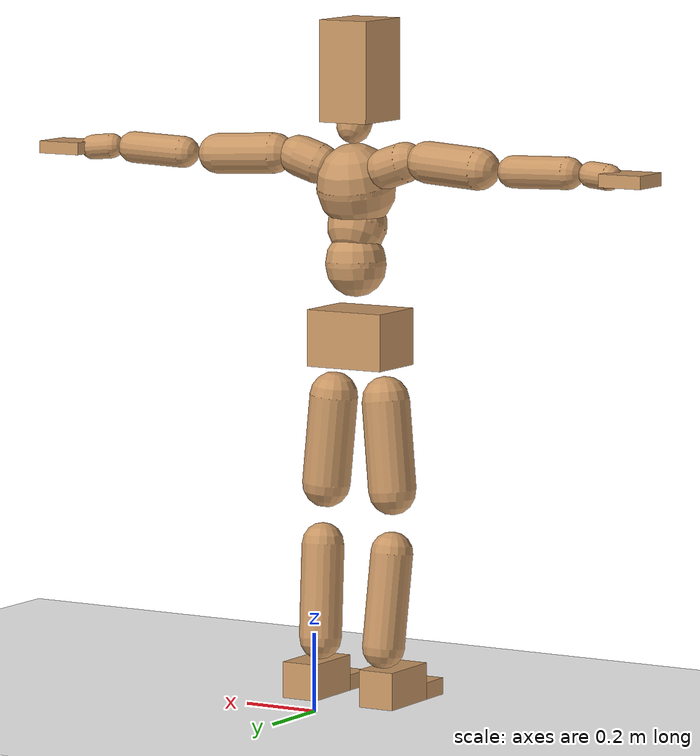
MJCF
<mujoco model="humanoid">
  <option integrator="implicitfast" />

  <visual>
    <global offwidth="1280" offheight="960" />
    <headlight active="1" ambient="0.34 0.34 0.34" diffuse="0.5 0.5 0.5" />
  </visual>

  <default>
    <joint damping="2" stiffness="2" armature="0.01" limited="true" solimplimit="0 .99 .01" />
    <geom condim="1" friction="0.7 0.005 0.0001" solimp=".99 .99 .003" solref="0.015 1" margin="0.001" rgba="0.8 0.6 .4 1" />
    <default class="smplcontact">
      <geom condim="3" friction="1. 0.005 0.0001" solref="0.015 1" solimp="0.98 0.98 0.001" priority="1" />
    </default>
    <default class="stiff_medium">
      <joint stiffness="10" />
    </default>
    <default class="stiff_medium_higher">
      <joint stiffness="50" />
    </default>
    <default class="stiff_high">
      <joint stiffness="100" />
    </default>
  </default>

  <asset>
    <texture type="skybox" builtin="gradient" rgb1="0.99 0.99 0.99" rgb2="0.608 0.828 0.892" width="100" />
    <texture builtin="flat" height="1278" mark="cross" markrgb="1 1 1" name="texgeom" random="0.01" rgb1="0.8 0.6 0.4" rgb2="0.8 0.6 0.4" type="cube" width="127" />
    <texture name="texplane" type="2d" builtin="checker" markrgb="1 1 1" rgb1="0.756 0.772 0.76" rgb2="0.6 0.6 0.6" width="100" height="100" />
    <material name="MatPlane" reflectance="0.5" texture="texplane" texrepeat="1 1" texuniform="true" />
    <material name="geom" texture="texgeom" texuniform="true" />
  </asset>

  <worldbody>
    <light name="tracking_light" pos="0 0 7" dir="0 0 -1" directional="true" cutoff="100" exponent="1" diffuse="1 1 1" specular="0.1 0.1 0.1" mode="trackcom" />
    <camera name="back" pos="0 3 2.4" xyaxes="-1 0 0 0 -1 2" mode="trackcom" />
    <camera name="side" pos="-3 0 2.4" xyaxes="0 -1 0 1 0 2" mode="trackcom" />
    <camera name="front_side" pos="-2.8 -2.8 0.8" xyaxes="0.5 -0.5 0 0.1 0.1 1" mode="trackcom" />
    <geom condim="3" name="floor" pos="0 0 0" rgba="1 1 1 1" size="100 100 .2" type="plane" material="MatPlane" />
    <body name="Pelvis" pos="-0.0018 -0.2233 0.9367" euler="90 0 0">
      <site name="Pelvis" size="0.01" />
      <freejoint name="Pelvis" />
      <geom type="box" pos="-0.0000 -0.0121 -0.0055" size="0.1069 0.0722 0.083" quat="1.0000 0.0000 0.0000 0.0000" density="3165.830099" name="Pelvis" />
      <body name="L_Hip" pos="0.0695 -0.0914 -0.0068">
        <joint name="L_Hip_x" type="hinge" pos="0 0 0" axis="1 0 0" stiffness="10.0" range="-160.0 22.92" class="stiff_medium" damping="15.0" armature="0.01"/>
        <joint name="L_Hip_y" type="hinge" pos="0 0 0" axis="0 1 0" stiffness="10.0" range="-70.0 70.0" class="stiff_medium" damping="10.0" armature="0.010000000000000002"/>
        <joint name="L_Hip_z" type="hinge" pos="0 0 0" axis="0 0 1" stiffness="10.0" range="-28.65 90.0" class="stiff_medium" damping="9.999999999999998" armature="0.009999999999999997"/>
        <geom type="capsule" density="2040.816327" fromto="0.0069 -0.075 -0.0009 0.0274 -0.3002 -0.0036" size="0.0615" name="L_Hip" />
        <body name="L_Knee" pos="0.0343 -0.3752 -0.0045">
          <joint name="L_Knee_x" type="hinge" pos="0 0 0" axis="1 0 0" range="-5.16 171.89" damping="8.000000000000002" armature="0.010000000000000005" stiffness="2.0"/>
          <joint name="L_Knee_y" type="hinge" pos="0 0 0" axis="0 1 0" range="-4.58 6.88" damping="8.0" armature="0.01" stiffness="2.0"/>
          <joint name="L_Knee_z" type="hinge" pos="0 0 0" axis="0 0 1" range="-6.88 4.58" damping="7.999999999999998" armature="0.009999999999999997" stiffness="2.0"/>
          <geom type="capsule" density="1234.567901" fromto="-0.0027 -0.0796 -0.0087 -0.0109 -0.3184 -0.035" size="0.0541" name="L_Knee" />
          <body name="L_Ankle" pos="-0.0136 -0.398 -0.0437">
            <joint name="L_Ankle_x" type="hinge" pos="0 0 0" axis="1 0 0" range="-45.84 45.84" class="stiff_medium" damping="6.000000000000078" armature="0.010000000000000262" stiffness="10.0"/>
            <joint name="L_Ankle_y" type="hinge" pos="0 0 0" axis="0 1 0" range="-74.48 22.92" class="stiff_medium" damping="3.0" armature="0.01" stiffness="10.0"/>
            <joint name="L_Ankle_z" type="hinge" pos="0 0 0" axis="0 0 1" range="-4.58 4.58" class="stiff_medium" damping="6.00000000000019" armature="0.010000000000000635" stiffness="10.0"/>
            <geom type="box" pos="0.0233 -0.0239 0.0242" size="0.0483 0.0464 0.085" quat="1.0000 0.0000 0.0000 0.0000" density="449.071558" name="L_Ankle" class="smplcontact" />
            <body name="L_Toe" pos="0.0264 -0.0558 0.1193">
              <joint name="L_Toe_x" type="hinge" pos="0 0 0" axis="1 0 0" range="-91.67 22.92" armature="0.009999999999999115" damping="1.9999999999999114" stiffness="2.0"/>
              <joint name="L_Toe_y" type="hinge" pos="0 0 0" axis="0 1 0" range="-4.58 4.58" armature="0.01" damping="2.0" stiffness="2.0"/>
              <joint name="L_Toe_z" type="hinge" pos="0 0 0" axis="0 0 1" range="-4.58 4.58" armature="0.009999999999999246" damping="1.9999999999999245" stiffness="2.0"/>
              <geom type="box" pos="-0.003 0.0055 0.0248" size="0.0478 0.02 0.0496" quat="1.0000 0.0000 0.0000 0.0000" density="423.206892" name="L_Toe" class="smplcontact" />
            </body>
          </body>
        </body>
      </body>
      <body name="R_Hip" pos="-0.0677 -0.0905 -0.0043">
        <joint name="R_Hip_x" type="hinge" pos="0 0 0" axis="1 0 0" stiffness="10.0" range="-160.0 22.92" class="stiff_medium" damping="15.0" armature="0.01"/>
        <joint name="R_Hip_y" type="hinge" pos="0 0 0" axis="0 1 0" stiffness="10.0" range="-70.0 70.0" class="stiff_medium" damping="10.0" armature="0.010000000000000002"/>
        <joint name="R_Hip_z" type="hinge" pos="0 0 0" axis="0 0 1" stiffness="10.0" range="-90.0 28.65" class="stiff_medium" damping="9.999999999999998" armature="0.009999999999999997"/>
        <geom type="capsule" density="2040.816327" fromto="-0.0077 -0.0765 -0.0018 -0.0306 -0.3061 -0.0071" size="0.0606" name="R_Hip" />
        <body name="R_Knee" pos="-0.0383 -0.3826 -0.0089">
          <joint name="R_Knee_x" type="hinge" pos="0 0 0" axis="1 0 0" range="-5.16 171.89" damping="8.000000000000002" armature="0.010000000000000005" stiffness="2.0"/>
          <joint name="R_Knee_y" type="hinge" pos="0 0 0" axis="0 1 0" range="-6.88 4.58" damping="8.0" armature="0.01" stiffness="2.0"/>
          <joint name="R_Knee_z" type="hinge" pos="0 0 0" axis="0 0 1" range="-4.58 6.88" damping="7.999999999999998" armature="0.009999999999999997" stiffness="2.0"/>
          <geom type="capsule" density="1234.567901" fromto="0.0032 -0.0797 -0.0085 0.0126 -0.3187 -0.0338" size="0.0541" name="R_Knee" />
          <body name="R_Ankle" pos="0.0158 -0.3984 -0.0423">
            <joint name="R_Ankle_x" type="hinge" pos="0 0 0" axis="1 0 0" range="-45.84 45.84" class="stiff_medium" damping="6.000000000000078" armature="0.010000000000000262" stiffness="10.0"/>
            <joint name="R_Ankle_y" type="hinge" pos="0 0 0" axis="0 1 0" range="-22.92 74.48" class="stiff_medium" damping="3.0" armature="0.01" stiffness="10.0"/>
            <joint name="R_Ankle_z" type="hinge" pos="0 0 0" axis="0 0 1" range="-4.58 4.58" class="stiff_medium" damping="6.00000000000019" armature="0.010000000000000635" stiffness="10.0"/>
            <geom type="box" pos="-0.0212 -0.0174 0.0256" size="0.0483 0.0478 0.0865" quat="1.0000 0.0000 0.0000 0.0000" density="434.700981" name="R_Ankle" class="smplcontact" />
            <body name="R_Toe" pos="-0.0254 -0.0481 0.1233">
              <joint name="R_Toe_x" type="hinge" pos="0 0 0" axis="1 0 0" range="-91.67 22.92" armature="0.009999999999999115" damping="1.9999999999999114" stiffness="2.0"/>
              <joint name="R_Toe_y" type="hinge" pos="0 0 0" axis="0 1 0" range="-4.58 4.58" armature="0.01" damping="2.0" stiffness="2.0"/>
              <joint name="R_Toe_z" type="hinge" pos="0 0 0" axis="0 0 1" range="-4.58 4.58" armature="0.009999999999999246" damping="1.9999999999999245" stiffness="2.0"/>
              <geom type="box" pos="0.0042 0.0045 0.0227" size="0.0479 0.0216 0.0493" quat="1.0000 0.0000 0.0000 0.0000" density="407.384095" name="R_Toe" class="smplcontact" />
            </body>
          </body>
        </body>
      </body>
      <body name="Torso" pos="-0.0025 0.109 -0.0267">
        <joint name="Torso_x" type="hinge" pos="0 0 0" axis="1 0 0" range="-25.78 57.3" class="stiff_medium" damping="16.957034083982748" armature="0.011556589922994345" stiffness="11.058279565217394"/>
        <joint name="Torso_y" type="hinge" pos="0 0 0" axis="0 1 0" range="-57.3 57.3" class="stiff_high" damping="21.17254886959551" armature="0.01006153221787451" stiffness="111.38383695652176"/>
        <joint name="Torso_z" type="hinge" pos="0 0 0" axis="0 0 1" range="-34.38 34.38" class="stiff_high" damping="21.95524402551856" armature="0.011049393101934117" stiffness="109.0631711111111"/>
        <geom type="capsule" density="2040.816327" fromto="0.0025 0.0608 0.0005 0.003 0.0743 0.0006" size="0.0769" name="Torso" />
        <body name="Spine" pos="0.0055 0.1352 0.0011">
          <joint name="Spine_x" type="hinge" pos="0 0 0" axis="1 0 0" stiffness="11.276547608695651" range="-25.78 57.3" class="stiff_medium" damping="17.55240794656278" armature="0.012142685092534132"/>
          <joint name="Spine_y" type="hinge" pos="0 0 0" axis="0 1 0" stiffness="11.246016956521741" range="-57.3 57.3" class="stiff_high" damping="8.509691522778883" armature="0.010061180173391897"/>
          <joint name="Spine_z" type="hinge" pos="0 0 0" axis="0 0 1" stiffness="22.41345217391305" range="-34.38 34.38" class="stiff_high" damping="13.326731180642458" armature="0.011005404910348767"/>
          <geom type="capsule" density="2040.816327" fromto="0.0007 0.0238 0.0114 0.0008 0.0291 0.014" size="0.0755" name="Spine" />
          <body name="Chest" pos="0.0015 0.0529 0.0254">
            <joint name="Chest_x" type="hinge" pos="0 0 0" axis="1 0 0" stiffness="11.626966739130433" range="-25.78 57.3" class="stiff_medium" damping="18.037454003432558" armature="0.012436595955503416"/>
            <joint name="Chest_y" type="hinge" pos="0 0 0" axis="0 1 0" stiffness="10.988628888888892" range="-57.3 57.3" class="stiff_high" damping="8.40963762591956" armature="0.010056134748814102"/>
            <joint name="Chest_z" type="hinge" pos="0 0 0" axis="0 0 1" stiffness="23.060705217391305" range="-34.38 34.38" class="stiff_high" damping="13.46973249776886" armature="0.010927299867114649"/>
            <geom type="capsule" density="2040.816327" fromto="-0.0009 0.0682 -0.0173 -0.001 0.0833 -0.0212" size="0.1002" name="Chest" />
            <body name="Neck" pos="-0.0028 0.2139 -0.0429">
              <joint name="Neck_x" type="hinge" pos="0 0 0" axis="1 0 0" range="-28.65 57.3" class="stiff_medium_higher" damping="13.930530747771538" armature="0.014369031284595301" stiffness="67.52705978260869"/>
              <joint name="Neck_y" type="hinge" pos="0 0 0" axis="0 1 0" range="-40.11 40.11" class="stiff_medium_higher" damping="14.556040889703816" armature="0.01563591992713115" stiffness="67.75371304347824"/>
              <joint name="Neck_z" type="hinge" pos="0 0 0" axis="0 0 1" range="-40.11 40.11" class="stiff_medium_higher" damping="13.99887144973862" armature="0.014357307259698667" stiffness="68.24692065217391"/>
              <geom type="capsule" density="1000" fromto="0.001 0.013 0.0103 0.0041 0.052 0.0411" size="0.0436" name="Neck" />
              <body name="Head" pos="0.0052 0.065 0.0513">
                <joint name="Head_x" type="hinge" pos="0 0 0" axis="1 0 0" range="-28.65 57.3" class="stiff_medium_higher" damping="2.89702053275656" armature="0.015238470764016483" stiffness="68.84489999999998"/>
                <joint name="Head_y" type="hinge" pos="0 0 0" axis="0 1 0" range="-40.11 40.11" class="stiff_medium_higher" damping="3.050008641514578" armature="0.016890417288197103" stiffness="68.84489999999998"/>
                <joint name="Head_z" type="hinge" pos="0 0 0" axis="0 0 1" range="-40.11 40.11" class="stiff_medium_higher" damping="2.8892350109957747" armature="0.015156676363760712" stiffness="68.84489999999998"/>
                <geom type="box" pos="-0.0042 0.0876 -0.0116" size="0.0674175 0.128383 0.08455" quat="1.0000 0.0000 0.0000 0.0000" density="1018.069894" name="Head" />
                <geom type="capsule" name="nose" size="0.02225 0.011125" pos="0 0.07 0.05" quat="1 0 0 0" mass="0" contype="0" conaffinity="0" />
              </body>
            </body>
            <body name="L_Thorax" pos="0.0788 0.1217 -0.0341">
              <joint name="L_Thorax_x" type="hinge" pos="0 0 0" axis="1 0 0" range="-10.89 4.58" class="stiff_medium_higher" damping="19.99999999999989" armature="0.00999999999999989" stiffness="50.0"/>
              <joint name="L_Thorax_y" type="hinge" pos="0 0 0" axis="0 1 0" range="-28.65 17.19" class="stiff_medium_higher" damping="20.0" armature="0.010000000000000002" stiffness="50.0"/>
              <joint name="L_Thorax_z" type="hinge" pos="0 0 0" axis="0 0 1" range="-31.51 40.11" class="stiff_medium_higher" damping="19.999999999999996" armature="0.009999999999999998" stiffness="50.0"/>
              <geom type="capsule" density="1000" fromto="0.0182 0.0061 -0.0018 0.0728 0.0244 -0.0071" size="0.0521" name="L_Thorax" />
              <body name="L_Shoulder" pos="0.091 0.0305 -0.0089">
                <joint name="L_Shoulder_x" type="hinge" pos="0 0 0" axis="1 0 0" range="-97.4 97.4" class="stiff_medium" damping="5.999999999999983" armature="0.009999999999999945" stiffness="10.0"/>
                <joint name="L_Shoulder_y" type="hinge" pos="0 0 0" axis="0 1 0" range="-108.86 80.21" class="stiff_medium" damping="5.999999999999999" armature="0.009999999999999998" stiffness="10.0"/>
                <joint name="L_Shoulder_z" type="hinge" pos="0 0 0" axis="0 0 1" range="-97.4 85.94" class="stiff_medium" damping="6.0" armature="0.01" stiffness="10.0"/>
                <geom type="capsule" density="1000" fromto="0.0519 -0.0026 -0.0055 0.2077 -0.0102 -0.022" size="0.0517" name="L_Shoulder" />
                <body name="L_Elbow" pos="0.2596 -0.0128 -0.0275">
                  <joint name="L_Elbow_x" type="hinge" pos="0 0 0" axis="1 0 0" range="-17.19 4.58" damping="4.999999999999939" armature="0.009999999999999756" stiffness="2.0"/>
                  <joint name="L_Elbow_y" type="hinge" pos="0 0 0" axis="0 1 0" range="-180.0 17.19" damping="5.0000000000000036" armature="0.010000000000000016" stiffness="2.0"/>
                  <joint name="L_Elbow_z" type="hinge" pos="0 0 0" axis="0 0 1" range="-100.84 4.58" damping="5.000000000000002" armature="0.010000000000000009" stiffness="2.0"/>
                  <geom type="capsule" density="1000" fromto="0.0498 0.0018 -0.0002 0.1994 0.0072 -0.0009" size="0.0405" name="L_Elbow" />
                  <body name="L_Wrist" pos="0.2492 0.009 -0.0012">
                    <joint name="L_Wrist_x" type="hinge" pos="0 0 0" axis="1 0 0" range="-180.0 22.92" armature="0.009999999999999915" damping="1.9999999999999916" stiffness="2.0"/>
                    <joint name="L_Wrist_y" type="hinge" pos="0 0 0" axis="0 1 0" range="-17.19 17.19" armature="0.00999999999999997" damping="1.999999999999997" stiffness="2.0"/>
                    <joint name="L_Wrist_z" type="hinge" pos="0 0 0" axis="0 0 1" range="-22.92 22.92" armature="0.009999999999999966" damping="1.9999999999999964" stiffness="2.0"/>
                    <geom type="capsule" density="1000" fromto="0.0168 -0.0016 -0.003 0.0672 -0.0065 -0.012" size="0.0318" name="L_Wrist" class="smplcontact" />
                    <body name="L_Hand" pos="0.084 -0.0082 -0.0149">
                      <joint name="L_Hand_x" type="hinge" pos="0 0 0" axis="1 0 0" range="-17.19 17.19" armature="0.010000000000000023" damping="2.000000000000002" stiffness="2.0"/>
                      <joint name="L_Hand_y" type="hinge" pos="0 0 0" axis="0 1 0" range="-51.57 51.57" armature="0.010000000000000444" damping="2.0000000000000444" stiffness="2.0"/>
                      <joint name="L_Hand_z" type="hinge" pos="0 0 0" axis="0 0 1" range="-91.67 91.67" armature="0.010000000000000547" damping="2.0000000000000546" stiffness="2.0"/>
                      <geom type="box" pos="0.0493 0.001 -0.0058" size="0.0585 0.0158 0.0538" quat="1.0000 0.0000 0.0000 0.0000" density="400.552564" name="L_Hand" class="smplcontact" />
                    </body>
                  </body>
                </body>
              </body>
            </body>
            <body name="R_Thorax" pos="-0.0818 0.1188 -0.0386">
              <joint name="R_Thorax_x" type="hinge" pos="0 0 0" axis="1 0 0" range="-10.89 4.58" class="stiff_medium_higher" damping="19.99999999999989" armature="0.00999999999999989" stiffness="50.0"/>
              <joint name="R_Thorax_y" type="hinge" pos="0 0 0" axis="0 1 0" range="-17.19 28.65" class="stiff_medium_higher" damping="20.0" armature="0.010000000000000002" stiffness="50.0"/>
              <joint name="R_Thorax_z" type="hinge" pos="0 0 0" axis="0 0 1" range="-40.11 31.51" class="stiff_medium_higher" damping="19.999999999999996" armature="0.009999999999999998" stiffness="50.0"/>
              <geom type="capsule" density="1000" fromto="-0.0192 0.0065 -0.0018 -0.0768 0.026 -0.0073" size="0.0511" name="R_Thorax" />
              <body name="R_Shoulder" pos="-0.096 0.0326 -0.0091">
                <joint name="R_Shoulder_x" type="hinge" pos="0 0 0" axis="1 0 0" range="-97.4 97.4" class="stiff_medium" damping="5.999999999999983" armature="0.009999999999999945" stiffness="10.0"/>
                <joint name="R_Shoulder_y" type="hinge" pos="0 0 0" axis="0 1 0" range="-80.21 108.86" class="stiff_medium" damping="5.999999999999999" armature="0.009999999999999998" stiffness="10.0"/>
                <joint name="R_Shoulder_z" type="hinge" pos="0 0 0" axis="0 0 1" range="-85.94 97.4" class="stiff_medium" damping="6.0" armature="0.01" stiffness="10.0"/>
                <geom type="capsule" density="1000" fromto="-0.0507 -0.0027 -0.0043 -0.203 -0.0107 -0.0171" size="0.0531" name="R_Shoulder" />
                <body name="R_Elbow" pos="-0.2537 -0.0133 -0.0214">
                  <joint name="R_Elbow_x" type="hinge" pos="0 0 0" axis="1 0 0" range="-17.19 4.58" damping="4.999999999999939" armature="0.009999999999999756" stiffness="2.0"/>
                  <joint name="R_Elbow_y" type="hinge" pos="0 0 0" axis="0 1 0" range="-17.19 180.0" damping="5.0000000000000036" armature="0.010000000000000016" stiffness="2.0"/>
                  <joint name="R_Elbow_z" type="hinge" pos="0 0 0" axis="0 0 1" range="-4.58 100.84" damping="5.000000000000002" armature="0.010000000000000009" stiffness="2.0"/>
                  <geom type="capsule" density="1000" fromto="-0.0511 0.0016 -0.0011 -0.2042 0.0062 -0.0044" size="0.0408" name="R_Elbow" />
                  <body name="R_Wrist" pos="-0.2553 0.0078 -0.0056">
                    <joint name="R_Wrist_x" type="hinge" pos="0 0 0" axis="1 0 0" range="-180.0 22.92" armature="0.009999999999999915" damping="1.9999999999999916" stiffness="2.0"/>
                    <joint name="R_Wrist_y" type="hinge" pos="0 0 0" axis="0 1 0" range="-17.19 17.19" armature="0.00999999999999997" damping="1.999999999999997" stiffness="2.0"/>
                    <joint name="R_Wrist_z" type="hinge" pos="0 0 0" axis="0 0 1" range="-22.92 22.92" armature="0.009999999999999966" damping="1.9999999999999964" stiffness="2.0"/>
                    <geom type="capsule" density="1000" fromto="-0.0169 -0.0012 -0.0021 -0.0677 -0.0049 -0.0083" size="0.0326" name="R_Wrist" class="smplcontact" />
                    <body name="R_Hand" pos="-0.0846 -0.0061 -0.0103">
                      <joint name="R_Hand_x" type="hinge" pos="0 0 0" axis="1 0 0" range="-17.19 17.19" armature="0.010000000000000023" damping="2.000000000000002" stiffness="2.0"/>
                      <joint name="R_Hand_y" type="hinge" pos="0 0 0" axis="0 1 0" range="-51.57 51.57" armature="0.010000000000000444" damping="2.0000000000000444" stiffness="2.0"/>
                      <joint name="R_Hand_z" type="hinge" pos="0 0 0" axis="0 0 1" range="-91.67 91.67" armature="0.010000000000000547" damping="2.0000000000000546" stiffness="2.0"/>
                      <geom type="box" pos="-0.0462 -0.0009 -0.0079" size="0.0569 0.0164 0.0546" quat="1.0000 0.0000 0.0000 0.0000" density="403.679611" name="R_Hand" class="smplcontact" />
                    </body>
                  </body>
                </body>
              </body>
            </body>
          </body>
        </body>
      </body>
    </body>
  </worldbody>
  <actuator>
    <general name="L_Hip_x" joint="L_Hip_x" biastype="affine" gainprm="287.33006409732246" biasprm="-215.3247604770444 -180.0 -2.0" ctrllimited="true" ctrlrange="-1 1" forcerange="-360.0 360.0" />
    <general name="L_Hip_y" joint="L_Hip_y" biastype="affine" gainprm="219.9114857512855" biasprm="0.0 -180.0 -2.0" ctrllimited="true" ctrlrange="-1 1" forcerange="-360.0 360.0" />
    <general name="L_Hip_z" joint="L_Hip_z" biastype="affine" gainprm="186.3749841742145" biasprm="96.3683546488669 -180.0 -1.9999999999999996" ctrllimited="true" ctrlrange="-1 1" forcerange="-360.0 360.0" />
    <general name="L_Knee_x" joint="L_Knee_x" biastype="affine" gainprm="278.10948965903646" biasprm="261.8988715665131 -180.0 -2.0000000000000004" ctrllimited="true" ctrlrange="-1 1" forcerange="-360.0 360.0" />
    <general name="L_Knee_y" joint="L_Knee_y" biastype="affine" gainprm="18.001325905069514" biasprm="3.612831551628262 -180.0 -2.0" ctrllimited="true" ctrlrange="-1 1" forcerange="-360.0 360.0" />
    <general name="L_Knee_z" joint="L_Knee_z" biastype="affine" gainprm="18.001325905069514" biasprm="-3.612831551628262 -180.0 -1.9999999999999996" ctrllimited="true" ctrlrange="-1 1" forcerange="-360.0 360.0" />
    <general name="L_Ankle_x" joint="L_Ankle_x" biastype="affine" gainprm="72.00530362027807" biasprm="0.0 -90.0 -2.000000000000026" ctrllimited="true" ctrlrange="-1 1" forcerange="-180.0 180.0" />
    <general name="L_Ankle_y" joint="L_Ankle_y" biastype="affine" gainprm="76.49778111491148" biasprm="-40.49512930477244 -90.0 -2.0" ctrllimited="true" ctrlrange="-1 1" forcerange="-180.0 180.0" />
    <general name="L_Ankle_z" joint="L_Ankle_z" biastype="affine" gainprm="7.1942471767206255" biasprm="0.0 -90.0 -2.0000000000000635" ctrllimited="true" ctrlrange="-1 1" forcerange="-180.0 180.0" />
    <general name="L_Toe_x" joint="L_Toe_x" biastype="affine" gainprm="71.99902043497087" biasprm="-43.19689898685965 -72.0 -0.7999999999999646" ctrllimited="true" ctrlrange="-1 1" forcerange="-144.0 144.0" />
    <general name="L_Toe_y" joint="L_Toe_y" biastype="affine" gainprm="5.755397741376501" biasprm="0.0 -72.0 -0.8" ctrllimited="true" ctrlrange="-1 1" forcerange="-144.0 144.0" />
    <general name="L_Toe_z" joint="L_Toe_z" biastype="affine" gainprm="5.755397741376501" biasprm="0.0 -72.0 -0.7999999999999698" ctrllimited="true" ctrlrange="-1 1" forcerange="-144.0 144.0" />
    <general name="R_Hip_x" joint="R_Hip_x" biastype="affine" gainprm="287.33006409732246" biasprm="-215.3247604770444 -180.0 -2.0" ctrllimited="true" ctrlrange="-1 1" forcerange="-360.0 360.0" />
    <general name="R_Hip_y" joint="R_Hip_y" biastype="affine" gainprm="219.9114857512855" biasprm="0.0 -180.0 -2.0" ctrllimited="true" ctrlrange="-1 1" forcerange="-360.0 360.0" />
    <general name="R_Hip_z" joint="R_Hip_z" biastype="affine" gainprm="186.3749841742145" biasprm="-96.3683546488669 -180.0 -1.9999999999999996" ctrllimited="true" ctrlrange="-1 1" forcerange="-360.0 360.0" />
    <general name="R_Knee_x" joint="R_Knee_x" biastype="affine" gainprm="278.10948965903646" biasprm="261.8988715665131 -180.0 -2.0000000000000004" ctrllimited="true" ctrlrange="-1 1" forcerange="-360.0 360.0" />
    <general name="R_Knee_y" joint="R_Knee_y" biastype="affine" gainprm="18.001325905069514" biasprm="-3.612831551628262 -180.0 -2.0" ctrllimited="true" ctrlrange="-1 1" forcerange="-360.0 360.0" />
    <general name="R_Knee_z" joint="R_Knee_z" biastype="affine" gainprm="18.001325905069514" biasprm="3.612831551628262 -180.0 -1.9999999999999996" ctrllimited="true" ctrlrange="-1 1" forcerange="-360.0 360.0" />
    <general name="R_Ankle_x" joint="R_Ankle_x" biastype="affine" gainprm="72.00530362027807" biasprm="0.0 -90.0 -2.000000000000026" ctrllimited="true" ctrlrange="-1 1" forcerange="-180.0 180.0" />
    <general name="R_Ankle_y" joint="R_Ankle_y" biastype="affine" gainprm="76.49778111491148" biasprm="40.49512930477244 -90.0 -2.0" ctrllimited="true" ctrlrange="-1 1" forcerange="-180.0 180.0" />
    <general name="R_Ankle_z" joint="R_Ankle_z" biastype="affine" gainprm="7.1942471767206255" biasprm="0.0 -90.0 -2.0000000000000635" ctrllimited="true" ctrlrange="-1 1" forcerange="-180.0 180.0" />
    <general name="R_Toe_x" joint="R_Toe_x" biastype="affine" gainprm="71.99902043497087" biasprm="-43.19689898685965 -72.0 -0.7999999999999646" ctrllimited="true" ctrlrange="-1 1" forcerange="-144.0 144.0" />
    <general name="R_Toe_y" joint="R_Toe_y" biastype="affine" gainprm="5.755397741376501" biasprm="0.0 -72.0 -0.8" ctrllimited="true" ctrlrange="-1 1" forcerange="-144.0 144.0" />
    <general name="R_Toe_z" joint="R_Toe_z" biastype="affine" gainprm="5.755397741376501" biasprm="0.0 -72.0 -0.7999999999999698" ctrllimited="true" ctrlrange="-1 1" forcerange="-144.0 144.0" />
    <general name="Torso_x" joint="Torso_x" biastype="affine" gainprm="192.4166577194726" biasprm="73.00160148432565 -265.3987095652174 -4.521875755728733" ctrllimited="true" ctrlrange="-1 1" forcerange="-398.09806434782615 398.09806434782615" />
    <general name="Torso_y" joint="Torso_y" biastype="affine" gainprm="267.3408999481966" biasprm="0.0 -267.3212086956522 -4.234509773919102" ctrllimited="true" ctrlrange="-1 1" forcerange="-400.9818130434783 400.9818130434783" />
    <general name="Torso_z" joint="Torso_z" biastype="affine" gainprm="157.0625349929179" biasprm="0.0 -261.75161066666664 -4.391048805103712" ctrllimited="true" ctrlrange="-1 1" forcerange="-392.627416 392.627416" />
    <general name="Spine_x" joint="Spine_x" biastype="affine" gainprm="196.21457286218217" biasprm="74.44250525536809 -270.6371426086956 -4.680642119083408" ctrllimited="true" ctrlrange="-1 1" forcerange="-405.95571391304344 405.95571391304344" />
    <general name="Spine_y" joint="Spine_y" biastype="affine" gainprm="269.9242884910478" biasprm="0.0 -269.90440695652177 -4.254845761389442" ctrllimited="true" ctrlrange="-1 1" forcerange="-404.8566104347827 404.8566104347827" />
    <general name="Spine_z" joint="Spine_z" biastype="affine" gainprm="161.38874289611906" biasprm="0.0 -268.9614260869566 -4.442243726880819" ctrllimited="true" ctrlrange="-1 1" forcerange="-403.4421391304349 403.4421391304349" />
    <general name="Chest_x" joint="Chest_x" biastype="affine" gainprm="202.3119479087769" biasprm="76.75580883587682 -279.0472017391304 -4.809987734248682" ctrllimited="true" ctrlrange="-1 1" forcerange="-418.5708026086956 418.5708026086956" />
    <general name="Chest_y" joint="Chest_y" biastype="affine" gainprm="263.74651983833445" biasprm="0.0 -263.7270933333334 -4.20481881295978" ctrllimited="true" ctrlrange="-1 1" forcerange="-395.5906400000001 395.5906400000001" />
    <general name="Chest_z" joint="Chest_z" biastype="affine" gainprm="166.04930808759917" biasprm="0.0 -276.7284626086957 -4.4899108325896195" ctrllimited="true" ctrlrange="-1 1" forcerange="-415.0926939130435 415.0926939130435" />
    <general name="Neck_x" joint="Neck_x" biastype="affine" gainprm="36.467298316735544" biasprm="12.155766105578515 -48.619483043478255 -1.114442459821723" ctrllimited="true" ctrlrange="-1 1" forcerange="-97.23896608695651 97.23896608695651" />
    <general name="Neck_y" joint="Neck_y" biastype="affine" gainprm="34.150386753677914" biasprm="0.0 -48.782673391304336 -1.1644832711763053" ctrllimited="true" ctrlrange="-1 1" forcerange="-97.56534678260867 97.56534678260867" />
    <general name="Neck_z" joint="Neck_z" biastype="affine" gainprm="34.398981698961656" biasprm="0.0 -49.13778286956522 -1.1199097159790898" ctrllimited="true" ctrlrange="-1 1" forcerange="-98.27556573913044 98.27556573913044" />
    <general name="Head_x" joint="Head_x" biastype="affine" gainprm="24.785989636038394" biasprm="8.26199654534613 -33.04555199999999 -1.158808213102624" ctrllimited="true" ctrlrange="-1 1" forcerange="-66.09110399999997 66.09110399999997" />
    <general name="Head_y" joint="Head_y" biastype="affine" gainprm="23.13359032696917" biasprm="0.0 -33.04555199999999 -1.2200034566058313" ctrllimited="true" ctrlrange="-1 1" forcerange="-66.09110399999997 66.09110399999997" />
    <general name="Head_z" joint="Head_z" biastype="affine" gainprm="23.13359032696917" biasprm="0.0 -33.04555199999999 -1.15569400439831" ctrllimited="true" ctrlrange="-1 1" forcerange="-66.09110399999997 66.09110399999997" />
    <general name="L_Thorax_x" joint="L_Thorax_x" biastype="affine" gainprm="16.200146117011364" biasprm="-6.6078165480505335 -120.0 -1.5999999999999912" ctrllimited="true" ctrlrange="-1 1" forcerange="-240.0 240.0" />
    <general name="L_Thorax_y" joint="L_Thorax_y" biastype="affine" gainprm="48.00353574685204" biasprm="-12.00088393671301 -120.0 -1.6" ctrllimited="true" ctrlrange="-1 1" forcerange="-240.0 240.0" />
    <general name="L_Thorax_z" joint="L_Thorax_z" biastype="affine" gainprm="75.00028861670033" biasprm="9.00589894029074 -120.0 -1.5999999999999999" ctrllimited="true" ctrlrange="-1 1" forcerange="-240.0 240.0" />
    <general name="L_Shoulder_x" joint="L_Shoulder_x" biastype="affine" gainprm="81.5976331892389" biasprm="0.0 -48.0 -1.5999999999999956" ctrllimited="true" ctrlrange="-1 1" forcerange="-96.0 96.0" />
    <general name="L_Shoulder_y" joint="L_Shoulder_y" biastype="affine" gainprm="79.19745640189629" biasprm="-12.00088393671301 -48.0 -1.5999999999999999" ctrllimited="true" ctrlrange="-1 1" forcerange="-96.0 96.0" />
    <general name="L_Shoulder_z" joint="L_Shoulder_z" biastype="affine" gainprm="76.79727961455369" biasprm="-4.800353574685214 -48.0 -1.6" ctrllimited="true" ctrlrange="-1 1" forcerange="-96.0 96.0" />
    <general name="L_Elbow_x" joint="L_Elbow_x" biastype="affine" gainprm="13.67849441372996" biasprm="-7.923096672353461 -72.0 -0.7999999999999903" ctrllimited="true" ctrlrange="-1 1" forcerange="-144.0 144.0" />
    <general name="L_Elbow_y" joint="L_Elbow_y" biastype="affine" gainprm="123.89813107227425" biasprm="-102.29653998619085 -72.0 -0.8000000000000006" ctrllimited="true" ctrlrange="-1 1" forcerange="-144.0 144.0" />
    <general name="L_Elbow_z" joint="L_Elbow_z" biastype="affine" gainprm="66.23733950828719" biasprm="-60.4819417669107 -72.0 -0.8000000000000004" ctrllimited="true" ctrlrange="-1 1" forcerange="-144.0 144.0" />
    <general name="L_Wrist_x" joint="L_Wrist_x" biastype="affine" gainprm="21.24973270888136" biasprm="-16.449379134196157 -12.0 -0.7999999999999967" ctrllimited="true" ctrlrange="-1 1" forcerange="-24.0 24.0" />
    <general name="L_Wrist_y" joint="L_Wrist_y" biastype="affine" gainprm="3.6002651810139037" biasprm="0.0 -12.0 -0.7999999999999988" ctrllimited="true" ctrlrange="-1 1" forcerange="-24.0 24.0" />
    <general name="L_Wrist_z" joint="L_Wrist_z" biastype="affine" gainprm="4.800353574685205" biasprm="0.0 -12.0 -0.7999999999999986" ctrllimited="true" ctrlrange="-1 1" forcerange="-24.0 24.0" />
    <general name="L_Hand_x" joint="L_Hand_x" biastype="affine" gainprm="3.6002651810139037" biasprm="0.0 -12.0 -0.8000000000000009" ctrllimited="true" ctrlrange="-1 1" forcerange="-24.0 24.0" />
    <general name="L_Hand_y" joint="L_Hand_y" biastype="affine" gainprm="10.800795543041708" biasprm="0.0 -12.0 -0.8000000000000178" ctrllimited="true" ctrlrange="-1 1" forcerange="-24.0 24.0" />
    <general name="L_Hand_z" joint="L_Hand_z" biastype="affine" gainprm="19.199319903638422" biasprm="0.0 -12.0 -0.8000000000000219" ctrllimited="true" ctrlrange="-1 1" forcerange="-24.0 24.0" />
    <general name="R_Thorax_x" joint="R_Thorax_x" biastype="affine" gainprm="16.200146117011364" biasprm="-6.6078165480505335 -120.0 -1.5999999999999912" ctrllimited="true" ctrlrange="-1 1" forcerange="-240.0 240.0" />
    <general name="R_Thorax_y" joint="R_Thorax_y" biastype="affine" gainprm="48.00353574685204" biasprm="12.000883936713002 -120.0 -1.6" ctrllimited="true" ctrlrange="-1 1" forcerange="-240.0 240.0" />
    <general name="R_Thorax_z" joint="R_Thorax_z" biastype="affine" gainprm="75.00028861670033" biasprm="-9.00589894029074 -120.0 -1.5999999999999999" ctrllimited="true" ctrlrange="-1 1" forcerange="-240.0 240.0" />
    <general name="R_Shoulder_x" joint="R_Shoulder_x" biastype="affine" gainprm="81.5976331892389" biasprm="0.0 -48.0 -1.5999999999999956" ctrllimited="true" ctrlrange="-1 1" forcerange="-96.0 96.0" />
    <general name="R_Shoulder_y" joint="R_Shoulder_y" biastype="affine" gainprm="79.19745640189629" biasprm="12.00088393671301 -48.0 -1.5999999999999999" ctrllimited="true" ctrlrange="-1 1" forcerange="-96.0 96.0" />
    <general name="R_Shoulder_z" joint="R_Shoulder_z" biastype="affine" gainprm="76.79727961455369" biasprm="4.800353574685204 -48.0 -1.6" ctrllimited="true" ctrlrange="-1 1" forcerange="-96.0 96.0" />
    <general name="R_Elbow_x" joint="R_Elbow_x" biastype="affine" gainprm="13.67849441372996" biasprm="-7.923096672353461 -72.0 -0.7999999999999903" ctrllimited="true" ctrlrange="-1 1" forcerange="-144.0 144.0" />
    <general name="R_Elbow_y" joint="R_Elbow_y" biastype="affine" gainprm="123.89813107227425" biasprm="102.29653998619085 -72.0 -0.8000000000000006" ctrllimited="true" ctrlrange="-1 1" forcerange="-144.0 144.0" />
    <general name="R_Elbow_z" joint="R_Elbow_z" biastype="affine" gainprm="66.23733950828719" biasprm="60.481941766910694 -72.0 -0.8000000000000004" ctrllimited="true" ctrlrange="-1 1" forcerange="-144.0 144.0" />
    <general name="R_Wrist_x" joint="R_Wrist_x" biastype="affine" gainprm="21.24973270888136" biasprm="-16.449379134196157 -12.0 -0.7999999999999967" ctrllimited="true" ctrlrange="-1 1" forcerange="-24.0 24.0" />
    <general name="R_Wrist_y" joint="R_Wrist_y" biastype="affine" gainprm="3.6002651810139037" biasprm="0.0 -12.0 -0.7999999999999988" ctrllimited="true" ctrlrange="-1 1" forcerange="-24.0 24.0" />
    <general name="R_Wrist_z" joint="R_Wrist_z" biastype="affine" gainprm="4.800353574685205" biasprm="0.0 -12.0 -0.7999999999999986" ctrllimited="true" ctrlrange="-1 1" forcerange="-24.0 24.0" />
    <general name="R_Hand_x" joint="R_Hand_x" biastype="affine" gainprm="3.6002651810139037" biasprm="0.0 -12.0 -0.8000000000000009" ctrllimited="true" ctrlrange="-1 1" forcerange="-24.0 24.0" />
    <general name="R_Hand_y" joint="R_Hand_y" biastype="affine" gainprm="10.800795543041708" biasprm="0.0 -12.0 -0.8000000000000178" ctrllimited="true" ctrlrange="-1 1" forcerange="-24.0 24.0" />
    <general name="R_Hand_z" joint="R_Hand_z" biastype="affine" gainprm="19.199319903638422" biasprm="0.0 -12.0 -0.8000000000000219" ctrllimited="true" ctrlrange="-1 1" forcerange="-24.0 24.0" />
  </actuator>
  <contact>
    <exclude body1="Torso" body2="Chest" />
    <exclude body1="Head" body2="Chest" />
    <exclude body1="R_Knee" body2="R_Toe" />
    <exclude body1="R_Knee" body2="L_Ankle" />
    <exclude body1="R_Knee" body2="L_Toe" />
    <exclude body1="L_Knee" body2="L_Toe" />
    <exclude body1="L_Knee" body2="R_Ankle" />
    <exclude body1="L_Knee" body2="R_Toe" />
    <exclude body1="L_Shoulder" body2="Chest" />
    <exclude body1="R_Shoulder" body2="Chest" />
  </contact>
  <sensor>
    <framelinvel name="sensor_Pelvis_framelinvel" objtype="xbody" objname="Pelvis" />
    <framelinvel name="sensor_L_Hip_framelinvel" objtype="xbody" objname="L_Hip" />
    <framelinvel name="sensor_L_Knee_framelinvel" objtype="xbody" objname="L_Knee" />
    <framelinvel name="sensor_L_Ankle_framelinvel" objtype="xbody" objname="L_Ankle" />
    <framelinvel name="sensor_L_Toe_framelinvel" objtype="xbody" objname="L_Toe" />
    <framelinvel name="sensor_R_Hip_framelinvel" objtype="xbody" objname="R_Hip" />
    <framelinvel name="sensor_R_Knee_framelinvel" objtype="xbody" objname="R_Knee" />
    <framelinvel name="sensor_R_Ankle_framelinvel" objtype="xbody" objname="R_Ankle" />
    <framelinvel name="sensor_R_Toe_framelinvel" objtype="xbody" objname="R_Toe" />
    <framelinvel name="sensor_Torso_framelinvel" objtype="xbody" objname="Torso" />
    <framelinvel name="sensor_Spine_framelinvel" objtype="xbody" objname="Spine" />
    <framelinvel name="sensor_Chest_framelinvel" objtype="xbody" objname="Chest" />
    <framelinvel name="sensor_Neck_framelinvel" objtype="xbody" objname="Neck" />
    <framelinvel name="sensor_Head_framelinvel" objtype="xbody" objname="Head" />
    <framelinvel name="sensor_L_Thorax_framelinvel" objtype="xbody" objname="L_Thorax" />
    <framelinvel name="sensor_L_Shoulder_framelinvel" objtype="xbody" objname="L_Shoulder" />
    <framelinvel name="sensor_L_Elbow_framelinvel" objtype="xbody" objname="L_Elbow" />
    <framelinvel name="sensor_L_Wrist_framelinvel" objtype="xbody" objname="L_Wrist" />
    <framelinvel name="sensor_L_Hand_framelinvel" objtype="xbody" objname="L_Hand" />
    <framelinvel name="sensor_R_Thorax_framelinvel" objtype="xbody" objname="R_Thorax" />
    <framelinvel name="sensor_R_Shoulder_framelinvel" objtype="xbody" objname="R_Shoulder" />
    <framelinvel name="sensor_R_Elbow_framelinvel" objtype="xbody" objname="R_Elbow" />
    <framelinvel name="sensor_R_Wrist_framelinvel" objtype="xbody" objname="R_Wrist" />
    <framelinvel name="sensor_R_Hand_framelinvel" objtype="xbody" objname="R_Hand" />
    <frameangvel name="sensor_Pelvis_frameangvel" objtype="xbody" objname="Pelvis" />
    <frameangvel name="sensor_L_Hip_frameangvel" objtype="xbody" objname="L_Hip" />
    <frameangvel name="sensor_L_Knee_frameangvel" objtype="xbody" objname="L_Knee" />
    <frameangvel name="sensor_L_Ankle_frameangvel" objtype="xbody" objname="L_Ankle" />
    <frameangvel name="sensor_L_Toe_frameangvel" objtype="xbody" objname="L_Toe" />
    <frameangvel name="sensor_R_Hip_frameangvel" objtype="xbody" objname="R_Hip" />
    <frameangvel name="sensor_R_Knee_frameangvel" objtype="xbody" objname="R_Knee" />
    <frameangvel name="sensor_R_Ankle_frameangvel" objtype="xbody" objname="R_Ankle" />
    <frameangvel name="sensor_R_Toe_frameangvel" objtype="xbody" objname="R_Toe" />
    <frameangvel name="sensor_Torso_frameangvel" objtype="xbody" objname="Torso" />
    <frameangvel name="sensor_Spine_frameangvel" objtype="xbody" objname="Spine" />
    <frameangvel name="sensor_Chest_frameangvel" objtype="xbody" objname="Chest" />
    <frameangvel name="sensor_Neck_frameangvel" objtype="xbody" objname="Neck" />
    <frameangvel name="sensor_Head_frameangvel" objtype="xbody" objname="Head" />
    <frameangvel name="sensor_L_Thorax_frameangvel" objtype="xbody" objname="L_Thorax" />
    <frameangvel name="sensor_L_Shoulder_frameangvel" objtype="xbody" objname="L_Shoulder" />
    <frameangvel name="sensor_L_Elbow_frameangvel" objtype="xbody" objname="L_Elbow" />
    <frameangvel name="sensor_L_Wrist_frameangvel" objtype="xbody" objname="L_Wrist" />
    <frameangvel name="sensor_L_Hand_frameangvel" objtype="xbody" objname="L_Hand" />
    <frameangvel name="sensor_R_Thorax_frameangvel" objtype="xbody" objname="R_Thorax" />
    <frameangvel name="sensor_R_Shoulder_frameangvel" objtype="xbody" objname="R_Shoulder" />
    <frameangvel name="sensor_R_Elbow_frameangvel" objtype="xbody" objname="R_Elbow" />
    <frameangvel name="sensor_R_Wrist_frameangvel" objtype="xbody" objname="R_Wrist" />
    <frameangvel name="sensor_R_Hand_frameangvel" objtype="xbody" objname="R_Hand" />
    <subtreelinvel name="Chest_subtreelinvel" body="Chest" />
    <gyro name="Pelvis_gyro" site="Pelvis" />
  </sensor>
</mujoco>
